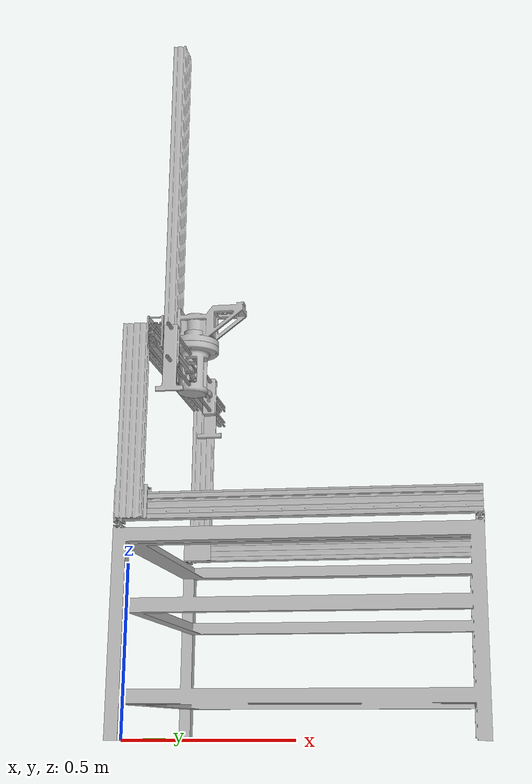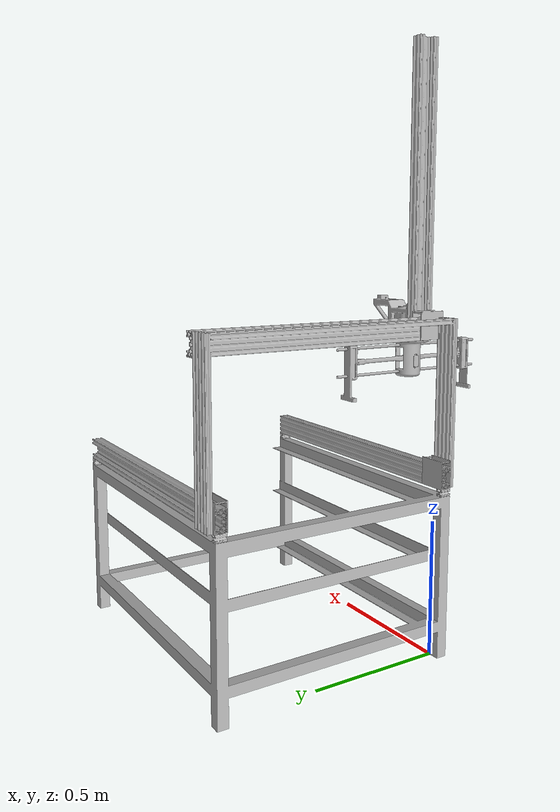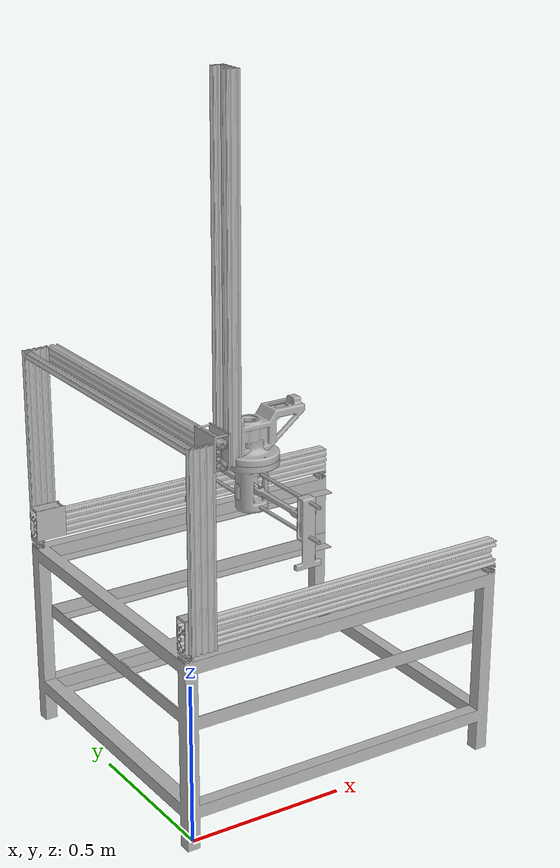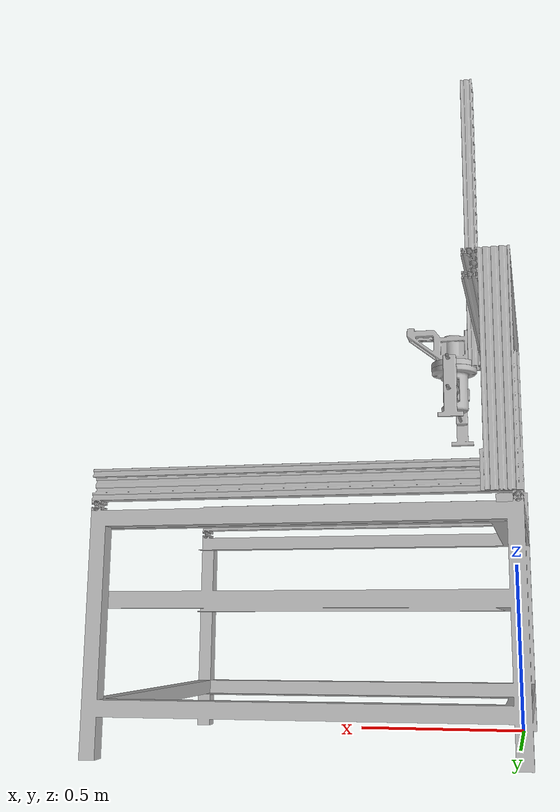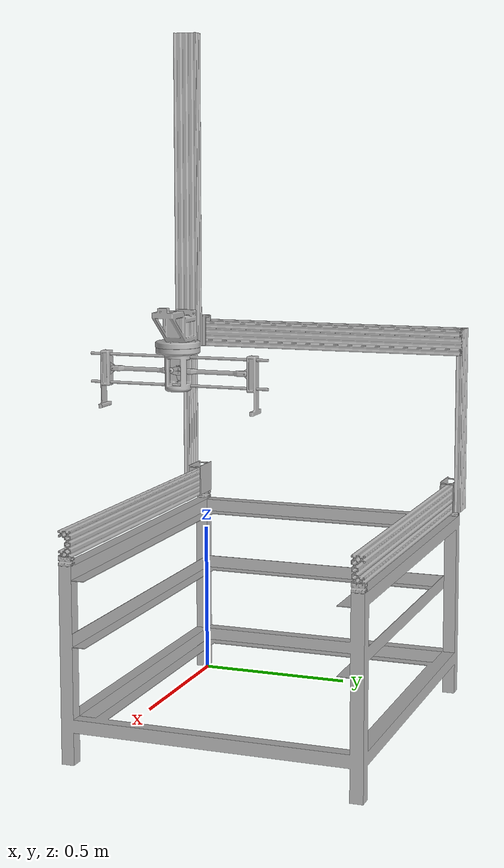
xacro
<?xml version="1.0" ?>
<robot name="robot_parametrico" xmlns:xacro="http://www.ros.org/wiki/xacro">

<!-- ROS usa package://; la exportacion para Isaac usa ../meshes/. -->
<xacro:arg name="mesh_prefix" default="package://robot_parametrico_description/meshes/" />
<xacro:arg name="include_ros_extensions" default="true" />
<xacro:include filename="materials.xacro" />
<xacro:if value="$(arg include_ros_extensions)">
  <xacro:include filename="robot_parametrico.trans" />
  <xacro:include filename="robot_parametrico.gazebo" />
</xacro:if>
<link name="base_link">
  <inertial>
    <origin xyz="0.43921503377845217 0.427408676475863 0.362078018202456" rpy="0 0 0"/>
    <mass value="37.86668442780645"/>
    <inertia ixx="7.907859" iyy="7.799111" izz="11.474119" ixy="-0.005887" iyz="0.02203" ixz="0.388202"/>
  </inertial>
  <visual>
    <origin xyz="0 0 0" rpy="0 0 0"/>
    <geometry>
      <mesh filename="$(arg mesh_prefix)base_link.stl" scale="0.001 0.001 0.001"/>
    </geometry>
    <material name="silver"/>
  </visual>
  <collision>
    <origin xyz="0 0 0" rpy="0 0 0"/>
    <geometry>
      <mesh filename="$(arg mesh_prefix)base_link.stl" scale="0.001 0.001 0.001"/>
    </geometry>
  </collision>
</link>

<link name="x_link_1">
  <inertial>
    <origin xyz="0.07304147362950583 0.4248653819254315 0.4303742780789386" rpy="0 0 0"/>
    <mass value="4.549596714702044"/>
    <inertia ixx="0.826581" iyy="0.176969" izz="0.662289" ixy="6e-06" iyz="-3e-05" ixz="-0.013361"/>
  </inertial>
  <visual>
    <origin xyz="0.04 0.0 -0.6269" rpy="0 0 0"/>
    <geometry>
      <mesh filename="$(arg mesh_prefix)x_link_1.stl" scale="0.001 0.001 0.001"/>
    </geometry>
    <material name="silver"/>
  </visual>
  <collision>
    <origin xyz="0.04 0.0 -0.6269" rpy="0 0 0"/>
    <geometry>
      <mesh filename="$(arg mesh_prefix)x_link_1.stl" scale="0.001 0.001 0.001"/>
    </geometry>
  </collision>
</link>

<link name="y_link_1">
  <inertial>
    <origin xyz="-0.020000000000004015 0.04999970476166336 0.050695926755149445" rpy="0 0 0"/>
    <mass value="0.7973307511653405"/>
    <inertia ixx="0.001358" iyy="0.001079" izz="0.00108" ixy="0.0" iyz="-0.0" ixz="0.0"/>
  </inertial>
  <visual>
    <origin xyz="-0.0895 0.063318 -1.1484" rpy="0 0 0"/>
    <geometry>
      <mesh filename="$(arg mesh_prefix)y_link_1.stl" scale="0.001 0.001 0.001"/>
    </geometry>
    <material name="silver"/>
  </visual>
  <collision>
    <origin xyz="-0.0895 0.063318 -1.1484" rpy="0 0 0"/>
    <geometry>
      <mesh filename="$(arg mesh_prefix)y_link_1.stl" scale="0.001 0.001 0.001"/>
    </geometry>
  </collision>
</link>

<link name="z_link_1">
  <inertial>
    <origin xyz="0.022649381038521807 0.03848712470802383 0.5175000000000003" rpy="0 0 0"/>
    <mass value="6.4060223481477445"/>
    <inertia ixx="0.576368" iyy="0.5728" izz="0.005452" ixy="1e-06" iyz="-0.0" ixz="0.0"/>
  </inertial>
  <visual>
    <origin xyz="-0.0945 0.073318 -1.1484" rpy="0 0 0"/>
    <geometry>
      <mesh filename="$(arg mesh_prefix)z_link_1.stl" scale="0.001 0.001 0.001"/>
    </geometry>
    <material name="silver"/>
  </visual>
  <collision>
    <origin xyz="-0.0945 0.073318 -1.1484" rpy="0 0 0"/>
    <geometry>
      <mesh filename="$(arg mesh_prefix)z_link_1.stl" scale="0.001 0.001 0.001"/>
    </geometry>
  </collision>
</link>

<link name="robot_cabezal1_1">
  <inertial>
    <origin xyz="0.07470375860725009 1.1761516598023797e-05 0.07435169471155834" rpy="0 0 0"/>
    <mass value="0.735233698589477"/>
    <inertia ixx="0.001161" iyy="0.002962" izz="0.002526" ixy="-0.0" iyz="-0.0" ixz="-0.000677"/>
  </inertial>
  <visual>
    <origin xyz="-0.1345 0.034818 -1.1484" rpy="0 0 0"/>
    <geometry>
      <mesh filename="$(arg mesh_prefix)robot_cabezal1_1.stl" scale="0.001 0.001 0.001"/>
    </geometry>
    <material name="silver"/>
  </visual>
  <collision>
    <origin xyz="-0.1345 0.034818 -1.1484" rpy="0 0 0"/>
    <geometry>
      <mesh filename="$(arg mesh_prefix)robot_cabezal1_1.stl" scale="0.001 0.001 0.001"/>
    </geometry>
  </collision>
</link>

<link name="robot_Externo1_1">
  <inertial>
    <origin xyz="-2.3037127760972e-15 -2.940462493737639e-07 -0.0057971577024436005" rpy="0 0 0"/>
    <mass value="0.4348559362165023"/>
    <inertia ixx="0.000618" iyy="0.000617" izz="0.001131" ixy="0.0" iyz="-0.0" ixz="-0.0"/>
  </inertial>
  <visual>
    <origin xyz="-0.1845 0.024818 -1.1709" rpy="0 0 0"/>
    <geometry>
      <mesh filename="$(arg mesh_prefix)robot_Externo1_1.stl" scale="0.001 0.001 0.001"/>
    </geometry>
    <material name="silver"/>
  </visual>
  <collision>
    <origin xyz="-0.1845 0.024818 -1.1709" rpy="0 0 0"/>
    <geometry>
      <mesh filename="$(arg mesh_prefix)robot_Externo1_1.stl" scale="0.001 0.001 0.001"/>
    </geometry>
  </collision>
</link>

<link name="robot_cabezal_1">
  <inertial>
    <origin xyz="-0.0032788461990227724 -2.0130890293561243e-05 -0.05001506846643755" rpy="0 0 0"/>
    <mass value="0.808298897205994"/>
    <inertia ixx="0.002812" iyy="0.002837" izz="0.001617" ixy="-0.0" iyz="-1e-06" ixz="-8.5e-05"/>
  </inertial>
  <visual>
    <origin xyz="-0.1845 0.024818 -1.1509" rpy="0 0 0"/>
    <geometry>
      <mesh filename="$(arg mesh_prefix)robot_cabezal_1.stl" scale="0.001 0.001 0.001"/>
    </geometry>
    <material name="silver"/>
  </visual>
  <collision>
    <origin xyz="-0.1845 0.024818 -1.1509" rpy="0 0 0"/>
    <geometry>
      <mesh filename="$(arg mesh_prefix)robot_cabezal_1.stl" scale="0.001 0.001 0.001"/>
    </geometry>
  </collision>
</link>

<link name="robot_mg996R_1">
  <inertial>
    <origin xyz="-0.008872223124904793 0.004961019065556179 0.024744331551719734" rpy="0 0 0"/>
    <mass value="0.24706042811522722"/>
    <inertia ixx="4.3e-05" iyy="6.5e-05" izz="3.8e-05" ixy="-0.0" iyz="-0.0" ixz="-0.0"/>
  </inertial>
  <visual>
    <origin xyz="-0.164022 0.029908 -1.0354" rpy="0 0 0"/>
    <geometry>
      <mesh filename="$(arg mesh_prefix)robot_mg996R_1.stl" scale="0.001 0.001 0.001"/>
    </geometry>
    <material name="silver"/>
  </visual>
  <collision>
    <origin xyz="-0.164022 0.029908 -1.0354" rpy="0 0 0"/>
    <geometry>
      <mesh filename="$(arg mesh_prefix)robot_mg996R_1.stl" scale="0.001 0.001 0.001"/>
    </geometry>
  </collision>
</link>

<link name="robot_Servo_horn__1">
  <inertial>
    <origin xyz="0.00031264063733987824 1.8085460379568818e-06 0.0" rpy="0 0 0"/>
    <mass value="0.005099610361289279"/>
    <!-- Estimacion por integracion volumetrica del STL (densidad uniforme),
         escalada a la masa CAD de 0.005099610361289279 kg; unidades kg*m^2. -->
    <inertia ixx="2.40436962e-7" iyy="1.25310030e-7" izz="1.25307736e-7" ixy="5.04782604e-10" iyz="9.16374540e-14" ixz="-1.93631163e-14"/>
  </inertial>
  <visual>
    <origin xyz="-0.176 0.024856 -1.0699" rpy="0 0 0"/>
    <geometry>
      <mesh filename="$(arg mesh_prefix)robot_Servo_horn__1.stl" scale="0.001 0.001 0.001"/>
    </geometry>
    <material name="silver"/>
  </visual>
  <collision>
    <origin xyz="-0.176 0.024856 -1.0699" rpy="0 0 0"/>
    <geometry>
      <mesh filename="$(arg mesh_prefix)robot_Servo_horn__1.stl" scale="0.001 0.001 0.001"/>
    </geometry>
  </collision>
</link>

<link name="robot_Externo3_v1_1_v1_1">
  <inertial>
    <origin xyz="0.0011958212378408717 5.026564255675159e-06 2.220446049250313e-16" rpy="0 0 0"/>
    <mass value="0.07977197198617901"/>
    <inertia ixx="3e-05" iyy="5e-06" izz="2.6e-05" ixy="0.0" iyz="-0.0" ixz="0.0"/>
  </inertial>
  <visual>
    <origin xyz="-0.1795 0.02484 -1.0699" rpy="0 0 0"/>
    <geometry>
      <mesh filename="$(arg mesh_prefix)robot_Externo3_v1_1_v1_1.stl" scale="0.001 0.001 0.001"/>
    </geometry>
    <material name="silver"/>
  </visual>
  <collision>
    <origin xyz="-0.1795 0.02484 -1.0699" rpy="0 0 0"/>
    <geometry>
      <mesh filename="$(arg mesh_prefix)robot_Externo3_v1_1_v1_1.stl" scale="0.001 0.001 0.001"/>
    </geometry>
  </collision>
</link>

<link name="robot_Paleta_1_v1_1">
  <inertial>
    <origin xyz="-0.004431038032916501 -0.10701997078977854 -2.292271994441819e-08" rpy="0 0 0"/>
    <mass value="0.05350927460261899"/>
    <inertia ixx="0.000258" iyy="3e-06" izz="0.000259" ixy="1e-06" iyz="-0.0" ixz="-0.0"/>
  </inertial>
  <visual>
    <origin xyz="-0.18461 0.049818 -1.0699" rpy="0 0 0"/>
    <geometry>
      <mesh filename="$(arg mesh_prefix)robot_Paleta_1_v1_1.stl" scale="0.001 0.001 0.001"/>
    </geometry>
    <material name="silver"/>
  </visual>
  <collision>
    <origin xyz="-0.18461 0.049818 -1.0699" rpy="0 0 0"/>
    <geometry>
      <mesh filename="$(arg mesh_prefix)robot_Paleta_1_v1_1.stl" scale="0.001 0.001 0.001"/>
    </geometry>
  </collision>
</link>

<link name="robot_Paleta_2_v1_1">
  <inertial>
    <origin xyz="-0.005368451064228202 0.10697734098803442 2.2922720610552005e-08" rpy="0 0 0"/>
    <mass value="0.05350927460261899"/>
    <inertia ixx="0.000258" iyy="3e-06" izz="0.000259" ixy="1e-06" iyz="-0.0" ixz="0.0"/>
  </inertial>
  <visual>
    <origin xyz="-0.17639 -0.000146 -1.0699" rpy="0 0 0"/>
    <geometry>
      <mesh filename="$(arg mesh_prefix)robot_Paleta_2_v1_1.stl" scale="0.001 0.001 0.001"/>
    </geometry>
    <material name="silver"/>
  </visual>
  <collision>
    <origin xyz="-0.17639 -0.000146 -1.0699" rpy="0 0 0"/>
    <geometry>
      <mesh filename="$(arg mesh_prefix)robot_Paleta_2_v1_1.stl" scale="0.001 0.001 0.001"/>
    </geometry>
  </collision>
</link>

<link name="robot_Pala_IZQ_v1_1">
  <inertial>
    <origin xyz="-0.003882672739056403 -0.026794905479833042 -0.019023121817092425" rpy="0 0 0"/>
    <mass value="0.1680843406216635"/>
    <inertia ixx="0.000488" iyy="0.000494" izz="4.1e-05" ixy="-0.0" iyz="-2.9e-05" ixz="0.0"/>
  </inertial>
  <visual>
    <origin xyz="-0.185548 0.263816 -1.0699" rpy="0 0 0"/>
    <geometry>
      <mesh filename="$(arg mesh_prefix)robot_Pala_IZQ_v1_1.stl" scale="0.001 0.001 0.001"/>
    </geometry>
    <material name="silver"/>
  </visual>
  <collision>
    <origin xyz="-0.185548 0.263816 -1.0699" rpy="0 0 0"/>
    <geometry>
      <mesh filename="$(arg mesh_prefix)robot_Pala_IZQ_v1_1.stl" scale="0.001 0.001 0.001"/>
    </geometry>
  </collision>
</link>

<link name="robot_Pala_DER_v1_1">
  <inertial>
    <origin xyz="0.00388284382809731 0.026795274188178148 -0.019023121817093536" rpy="0 0 0"/>
    <mass value="0.1680843406216635"/>
    <inertia ixx="0.000488" iyy="0.000494" izz="4.1e-05" ixy="-0.0" iyz="2.9e-05" ixz="-0.0"/>
  </inertial>
  <visual>
    <origin xyz="-0.165652 -0.214101 -1.0699" rpy="0 0 0"/>
    <geometry>
      <mesh filename="$(arg mesh_prefix)robot_Pala_DER_v1_1.stl" scale="0.001 0.001 0.001"/>
    </geometry>
    <material name="silver"/>
  </visual>
  <collision>
    <origin xyz="-0.165652 -0.214101 -1.0699" rpy="0 0 0"/>
    <geometry>
      <mesh filename="$(arg mesh_prefix)robot_Pala_DER_v1_1.stl" scale="0.001 0.001 0.001"/>
    </geometry>
  </collision>
</link>

<link name="soporte_1_1">
  <inertial>
    <origin xyz="-0.0014033395286560946 0.3199967836864103 1.3322676295501878e-15" rpy="0 0 0"/>
    <mass value="0.07497096708526683"/>
    <inertia ixx="0.00256" iyy="2e-06" izz="0.00256" ixy="1.1e-05" iyz="0.0" ixz="0.0"/>
  </inertial>
  <visual>
    <origin xyz="-0.181728 0.304833 -1.1179" rpy="0 0 0"/>
    <geometry>
      <mesh filename="$(arg mesh_prefix)soporte_1_1.stl" scale="0.001 0.001 0.001"/>
    </geometry>
    <material name="silver"/>
  </visual>
  <collision>
    <origin xyz="-0.181728 0.304833 -1.1179" rpy="0 0 0"/>
    <geometry>
      <mesh filename="$(arg mesh_prefix)soporte_1_1.stl" scale="0.001 0.001 0.001"/>
    </geometry>
  </collision>
</link>

<link name="soporte_2_1">
  <inertial>
    <origin xyz="-0.00140333952865615 0.31999678368641016 1.5543122344752192e-15" rpy="0 0 0"/>
    <mass value="0.07497096708526683"/>
    <inertia ixx="0.00256" iyy="2e-06" izz="0.00256" ixy="1.1e-05" iyz="0.0" ixz="-0.0"/>
  </inertial>
  <visual>
    <origin xyz="-0.181728 0.304833 -1.0219" rpy="0 0 0"/>
    <geometry>
      <mesh filename="$(arg mesh_prefix)soporte_2_1.stl" scale="0.001 0.001 0.001"/>
    </geometry>
    <material name="silver"/>
  </visual>
  <collision>
    <origin xyz="-0.181728 0.304833 -1.0219" rpy="0 0 0"/>
    <geometry>
      <mesh filename="$(arg mesh_prefix)soporte_2_1.stl" scale="0.001 0.001 0.001"/>
    </geometry>
  </collision>
</link>

<joint name="x_joint" type="prismatic">
  <origin xyz="-0.04 0.0 0.6269" rpy="0 0 0"/>
  <parent link="base_link"/>
  <child link="x_link_1"/>
  <axis xyz="-1.0 -0.0 -0.0"/>
  <limit upper="0.0" lower="-0.9" effort="100" velocity="100"/>
</joint>

<joint name="y_joint" type="prismatic">
  <origin xyz="0.1295 -0.063318 0.5215" rpy="0 0 0"/>
  <parent link="x_link_1"/>
  <child link="y_link_1"/>
  <axis xyz="-0.0 1.0 0.0"/>
  <limit upper="0.65" lower="0.0" effort="100" velocity="100"/>
</joint>

<joint name="z_joint" type="prismatic">
  <origin xyz="0.005 0.0 0.0" rpy="0 0 0"/>
  <parent link="y_link_1"/>
  <child link="z_link_1"/>
  <axis xyz="-0.0 -0.0 -1.0"/>
  <limit upper="0.935" lower="0.0" effort="100" velocity="100"/>
</joint>

<joint name="rigida_1" type="fixed">
  <origin xyz="0.04 0.0385 0.0" rpy="0 0 0"/>
  <parent link="z_link_1"/>
  <child link="robot_cabezal1_1"/>
</joint>

<joint name="r_joint" type="revolute">
  <origin xyz="0.05 0.0 0.0225" rpy="0 0 0"/>
  <parent link="robot_cabezal1_1"/>
  <child link="robot_Externo1_1"/>
  <axis xyz="0.0 -0.0 -1.0"/>
  <limit upper="1.570796" lower="-1.570796" effort="100" velocity="100"/>
</joint>

<joint name="rigida_2" type="fixed">
  <origin xyz="0.0 0.0 -0.02" rpy="0 0 0"/>
  <parent link="robot_Externo1_1"/>
  <child link="robot_cabezal_1"/>
</joint>

<joint name="rigida_3" type="fixed">
  <origin xyz="-0.020478 -0.00509 -0.1155" rpy="0 0 0"/>
  <parent link="robot_cabezal_1"/>
  <child link="robot_mg996R_1"/>
</joint>

<joint name="rigida_4" type="fixed">
  <origin xyz="0.011978 0.005052 0.0345" rpy="0 0 0"/>
  <parent link="robot_mg996R_1"/>
  <child link="robot_Servo_horn__1"/>
</joint>

<joint name="rigida_5" type="fixed">
  <origin xyz="0.0035 1.6e-05 0.0" rpy="0 0 0"/>
  <parent link="robot_Servo_horn__1"/>
  <child link="robot_Externo3_v1_1_v1_1"/>
</joint>

<joint name="grid_izq" type="prismatic">
  <origin xyz="0.00511 -0.024978 0.0" rpy="0 0 0"/>
  <parent link="robot_Externo3_v1_1_v1_1"/>
  <child link="robot_Paleta_1_v1_1"/>
  <axis xyz="-0.004384 0.99999 -0.0"/>
  <limit upper="0.04" lower="-0.04" effort="100" velocity="100"/>
  <!-- Un solo mando: grid_der. Ambos ejes tienen el mismo sentido. -->
  <mimic joint="grid_der" multiplier="-1" offset="0"/>
</joint>

<joint name="grid_der" type="prismatic">
  <origin xyz="0.00511 0.024986 0.0" rpy="0 0 0"/>
  <parent link="robot_Externo3_v1_1_v1_1"/>
  <child link="robot_Paleta_2_v1_1"/>
  <axis xyz="-0.004384 0.99999 -0.0"/>
  <limit upper="0.04" lower="-0.04" effort="100" velocity="100"/>
</joint>

<joint name="rigida_6" type="fixed">
  <origin xyz="0.000938 -0.213998 0.0" rpy="0 0 0"/>
  <parent link="robot_Paleta_1_v1_1"/>
  <child link="robot_Pala_IZQ_v1_1"/>
</joint>

<joint name="rigida_7" type="fixed">
  <origin xyz="-0.010738 0.213955 0.0" rpy="0 0 0"/>
  <parent link="robot_Paleta_2_v1_1"/>
  <child link="robot_Pala_DER_v1_1"/>
</joint>

<joint name="rigida_8" type="fixed">
  <origin xyz="0.000197 -0.32 -0.033" rpy="0 0 0"/>
  <parent link="robot_cabezal_1"/>
  <child link="soporte_1_1"/>
</joint>

<joint name="rigida_9" type="fixed">
  <origin xyz="0.000197 -0.32 -0.129" rpy="0 0 0"/>
  <parent link="robot_cabezal_1"/>
  <child link="soporte_2_1"/>
</joint>

</robot>

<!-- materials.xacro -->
<robot name="robot_parametrico" xmlns:xacro="http://www.ros.org/wiki/xacro" >

<material name="silver">
  <color rgba="0.700 0.700 0.700 1.000"/>
</material>

</robot>

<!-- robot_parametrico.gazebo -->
<robot name="robot_parametrico" xmlns:xacro="http://www.ros.org/wiki/xacro" >

<xacro:property name="body_color" value="Gazebo/Silver" />

<gazebo>
  <plugin name="control" filename="libgazebo_ros_control.so"/>
</gazebo>
<gazebo reference="base_link">
  <material>${body_color}</material>
  <mu1>0.2</mu1>
  <mu2>0.2</mu2>
  <self_collide>true</self_collide>
  <gravity>true</gravity>
</gazebo>

<gazebo reference="x_link_1">
  <material>${body_color}</material>
  <mu1>0.2</mu1>
  <mu2>0.2</mu2>
  <self_collide>true</self_collide>
</gazebo>

<gazebo reference="y_link_1">
  <material>${body_color}</material>
  <mu1>0.2</mu1>
  <mu2>0.2</mu2>
  <self_collide>true</self_collide>
</gazebo>

<gazebo reference="z_link_1">
  <material>${body_color}</material>
  <mu1>0.2</mu1>
  <mu2>0.2</mu2>
  <self_collide>true</self_collide>
</gazebo>

<gazebo reference="robot_cabezal1_1">
  <material>${body_color}</material>
  <mu1>0.2</mu1>
  <mu2>0.2</mu2>
  <self_collide>true</self_collide>
</gazebo>

<gazebo reference="robot_Externo1_1">
  <material>${body_color}</material>
  <mu1>0.2</mu1>
  <mu2>0.2</mu2>
  <self_collide>true</self_collide>
</gazebo>

<gazebo reference="robot_cabezal_1">
  <material>${body_color}</material>
  <mu1>0.2</mu1>
  <mu2>0.2</mu2>
  <self_collide>true</self_collide>
</gazebo>

<gazebo reference="robot_mg996R_1">
  <material>${body_color}</material>
  <mu1>0.2</mu1>
  <mu2>0.2</mu2>
  <self_collide>true</self_collide>
</gazebo>

<gazebo reference="robot_Servo_horn__1">
  <material>${body_color}</material>
  <mu1>0.2</mu1>
  <mu2>0.2</mu2>
  <self_collide>true</self_collide>
</gazebo>

<gazebo reference="robot_Externo3_v1_1_v1_1">
  <material>${body_color}</material>
  <mu1>0.2</mu1>
  <mu2>0.2</mu2>
  <self_collide>true</self_collide>
</gazebo>

<gazebo reference="robot_Paleta_1_v1_1">
  <material>${body_color}</material>
  <mu1>0.2</mu1>
  <mu2>0.2</mu2>
  <self_collide>true</self_collide>
</gazebo>

<gazebo reference="robot_Paleta_2_v1_1">
  <material>${body_color}</material>
  <mu1>0.2</mu1>
  <mu2>0.2</mu2>
  <self_collide>true</self_collide>
</gazebo>

<gazebo reference="robot_Pala_IZQ_v1_1">
  <material>${body_color}</material>
  <mu1>0.2</mu1>
  <mu2>0.2</mu2>
  <self_collide>true</self_collide>
</gazebo>

<gazebo reference="robot_Pala_DER_v1_1">
  <material>${body_color}</material>
  <mu1>0.2</mu1>
  <mu2>0.2</mu2>
  <self_collide>true</self_collide>
</gazebo>

<gazebo reference="soporte_1_1">
  <material>${body_color}</material>
  <mu1>0.2</mu1>
  <mu2>0.2</mu2>
  <self_collide>true</self_collide>
</gazebo>

<gazebo reference="soporte_2_1">
  <material>${body_color}</material>
  <mu1>0.2</mu1>
  <mu2>0.2</mu2>
  <self_collide>true</self_collide>
</gazebo>

</robot>
